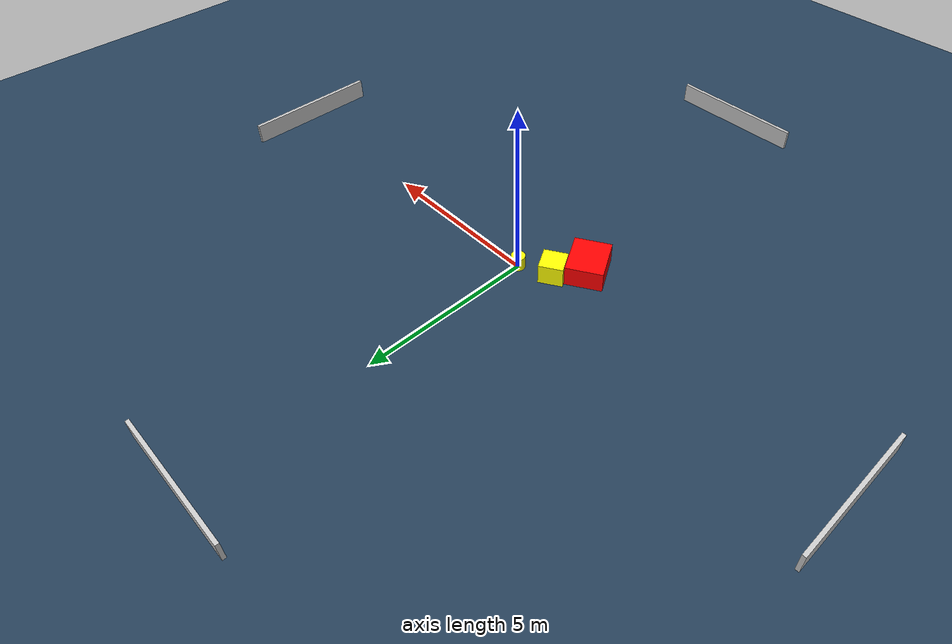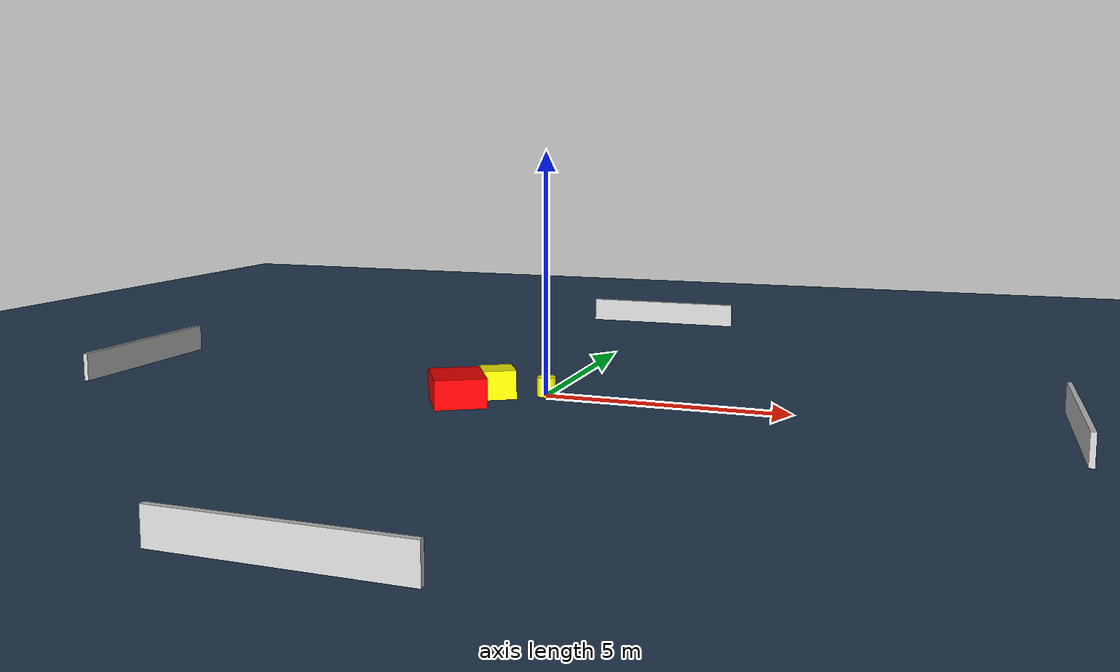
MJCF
<?xml version="1.0" ?>
<mujoco model="generated_environment">
  <option timestep="0.01" integrator="RK4" cone="elliptic"/>
  <default>
    <geom density="1"/>
  </default>
  <asset>
    <texture builtin="gradient" height="3072" name="skybox" rgb1="0.3 0.5 0.7" rgb2="0 0 0" type="skybox" width="512"/>
    <texture builtin="checker" height="300" name="groundplane" rgb1="0.2 0.3 0.4" rgb2="0.1 0.2 0.3" type="2d" width="300"/>
    <material name="groundplane" reflectance="0.2" texrepeat="5 5" texture="groundplane"/>
  </asset>
  <worldbody>
    <light dir="0 0 -1" directional="true" pos="0 0 1.5"/>
    <geom condim="3" friction="0.5 0.005 0.001" material="groundplane" name="floor" pos="0 0 0" size="0 0 0.05" type="plane"/>
    <body name="walls">
      <geom name="wall_1" condim="4" pos="-10.0 0.0 0.3" rgba="0.800000011920929 0.800000011920929 0.800000011920929 1.0" size="0.05 2.0 0.3" type="box"/>
      <geom name="wall_2" condim="4" pos="10.0 0.0 0.3" rgba="0.800000011920929 0.800000011920929 0.800000011920929 1.0" size="0.05 2.0 0.3" type="box"/>
      <geom name="wall_3" condim="4" pos="0.0 -10.0 0.3" rgba="0.800000011920929 0.800000011920929 0.800000011920929 1.0" size="2.0 0.05 0.3" type="box"/>
      <geom name="wall_4" condim="4" pos="0.0 10.0 0.3" rgba="0.800000011920929 0.800000011920929 0.800000011920929 1.0" size="2.0 0.05 0.3" type="box"/>
    </body>
    <body name="robot">
      <joint name="joint_x" type="slide" pos="0 0 0" axis="1 0 0"/>
      <joint name="joint_y" type="slide" pos="0 0 0" axis="0 1 0"/>
      <geom name="robot" type="cylinder" pos="0.0 0.0 0.2" size="0.2 0.2 0.0" mass="5.0" friction="1.0 0.005 0.0001" condim="4" rgba="1.0 1.0 0.0 1.0"/>
    </body>
    <body name="obstacle_1_movable">
      <geom name="obstacle_1_movable" condim="4" pos="-0.9251168610338036 -0.4107541794291245 0.3" euler="0 0 300.96351314524486" friction="0.0 0.005 0.001" rgba="1.0 1.0 0.0 1.0" size="0.3391132861980177 0.34171012381048316 0.3" type="box" mass="0.1"/>
      <joint type="free"/>
    </body>
    <body name="obstacle_2_static">
      <geom name="obstacle_2_static" condim="4" pos="-1.4769755377315696 -1.1981084549875198 0.3" euler="0 0 210.45443170904207" friction="0.0 0.005 0.001" rgba="1.0 0.0 0.0 1.0" size="0.5226864491416099 0.6198331302198377 0.3" type="box"/>
    </body>
  </worldbody>
  <actuator>
    <motor name="actuator_x" joint="joint_x" gear="1" ctrlrange="-1 1"/>
    <motor name="actuator_y" joint="joint_y" gear="1" ctrlrange="-1 1"/>
  </actuator>
</mujoco>
